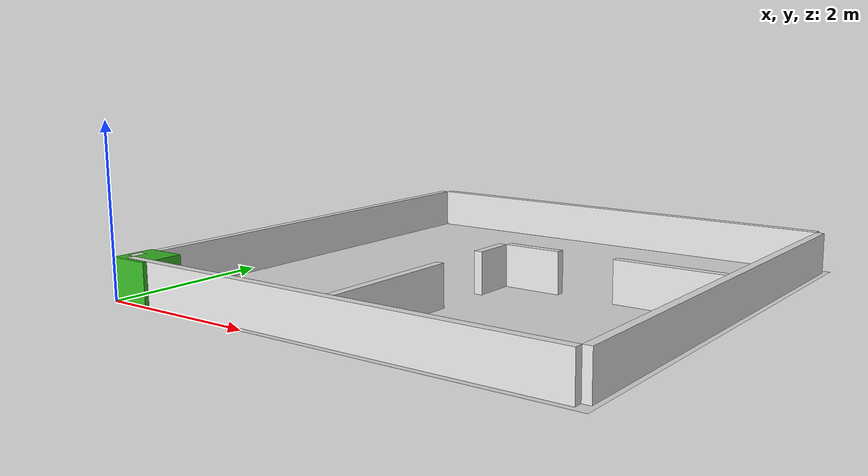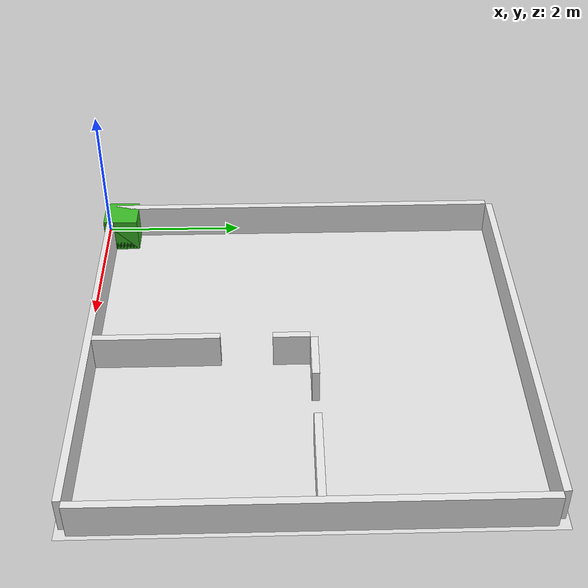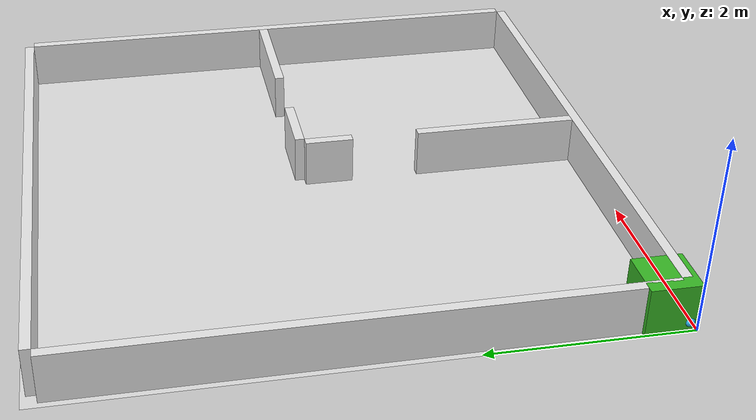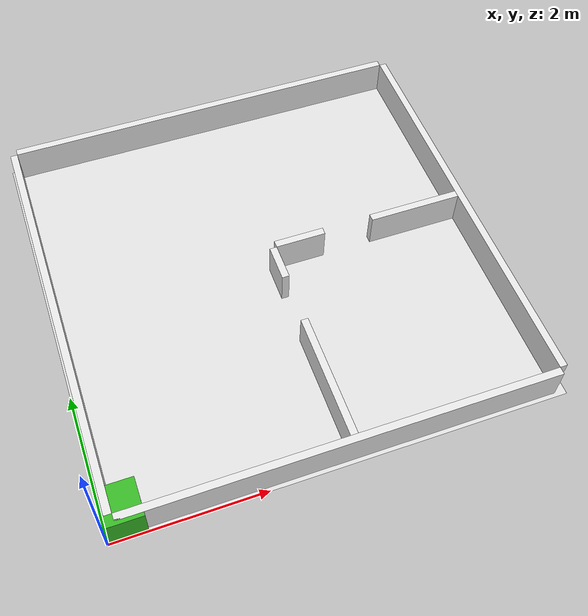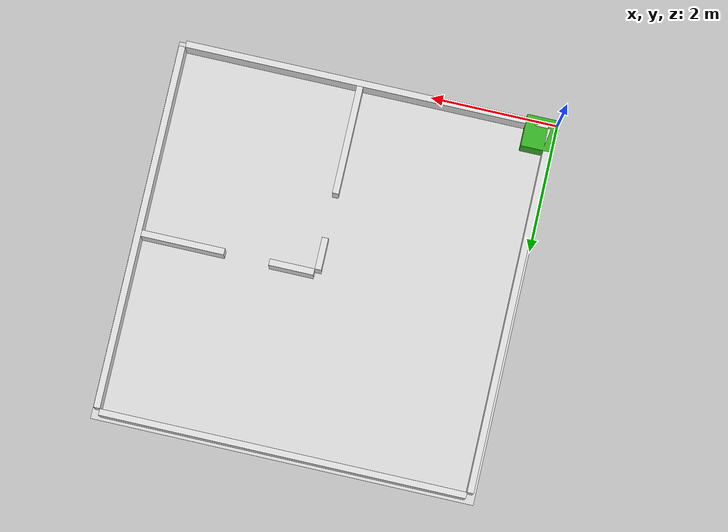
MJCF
<?xml version="1.0" encoding="utf-8"?>
<mujoco>
	<compiler angle="radian" coordinate="local" meshdir="d:/OpenAI/mujoco-worldgen/assets/stls" texturedir="d:/OpenAI/mujoco-worldgen/assets/textures"></compiler>
	<visual>
		<global offwidth="1920" offheight="1080"></global>
		<rgba fog="1.0 1.0 1.0 1"></rgba>
		<quality shadowsize="4096"></quality>
		<map fogstart="100" fogend="200" haze="0.00"></map>
	</visual>
	<asset>
		<texture name="skybox" type="skybox" builtin="gradient" rgb1="0.95 0.95 1.0" rgb2="1.0 1.0 1.0" width="512" height="512"></texture>
		<texture name="grid" type="2d" builtin="checker" rgb1=".8 .8 .8" rgb2=".95 .95 .95" width="512" height="512"></texture>
		<texture name="agent0:smiley" file="smiley.png" gridsize="3 4" gridlayout=".U..LFRB.D.."></texture>
		<texture name="agent1:smiley" file="smiley.png" gridsize="3 4" gridlayout=".U..LFRB.D.."></texture>
		<texture name="agent2:smiley" file="smiley.png" gridsize="3 4" gridlayout=".U..LFRB.D.."></texture>
		<texture name="agent3:smiley" file="smiley.png" gridsize="3 4" gridlayout=".U..LFRB.D.."></texture>
		<material name="grid" texture="grid" texrepeat="15 15" reflectance="0.2"></material>
		<material name="agent0:matSmiley" texture="agent0:smiley" specular="1" shininess="0.3" reflectance="0"></material>
		<material name="agent1:matSmiley" texture="agent1:smiley" specular="1" shininess="0.3" reflectance="0"></material>
		<material name="agent2:matSmiley" texture="agent2:smiley" specular="1" shininess="0.3" reflectance="0"></material>
		<material name="agent3:matSmiley" texture="agent3:smiley" specular="1" shininess="0.3" reflectance="0"></material>
		<material name="ramp0:rampmat" specular="1" shininess="0.3" reflectance="0" rgba="0 0.5 1 1"></material>
		<mesh file="ramp.stl" name="ramp0:ramp" scale="0.5 0.5 0.5"></mesh>
	</asset>
	<option timestep="0.005">
		<flag warmstart="enable"></flag>
	</option>
	<worldbody>
		<light name="sun" pos="0 0 10" dir="0 0 -1" directional="true" castshadow="true" diffuse="0.8 0.8 0.8" specular="0.1 0.1 0.1"></light>
		<light name="ambient_fill" pos="5 5 10" dir="-1 -1 -1" directional="true" diffuse="0.4 0.4 0.4" castshadow="false"></light>
		<light name="back_fill" pos="-5 -5 10" dir="1 1 -1" directional="true" diffuse="0.2 0.2 0.2" castshadow="false"></light>
		<geom name="floor0" pos="3 3 0" size="3 3 1" type="plane" condim="3" material="grid" friction="0.2"></geom>
		<body name="floor0" pos="3 3 0"></body>
		<body name="wall0" pos="0.1 3 0.25">
			<geom size="0.05 2.85 0.25" type="box" condim="3" name="wall0" rgba="0.9 0.9 0.9 1" group="1" friction="0.01"></geom>
		</body>
		<body name="wall1" pos="3 0.1 0.25">
			<geom size="2.85 0.05 0.25" type="box" condim="3" name="wall1" rgba="0.9 0.9 0.9 1" group="1" friction="0.01"></geom>
		</body>
		<body name="wall2" pos="5.9 3 0.25">
			<geom size="0.05 2.85 0.25" type="box" condim="3" name="wall2" rgba="0.9 0.9 0.9 1" group="1" friction="0.01"></geom>
		</body>
		<body name="wall3" pos="3 5.9 0.25">
			<geom size="2.85 0.05 0.25" type="box" condim="3" name="wall3" rgba="0.9 0.9 0.9 1" group="1" friction="0.01"></geom>
		</body>
		<body name="wall4" pos="3.1 1 0.25">
			<geom size="0.05 0.85 0.25" type="box" condim="3" name="wall4" rgba="0.9 0.9 0.9 1" group="1" friction="0.01"></geom>
		</body>
		<body name="wall5" pos="3.1 2.8 0.25">
			<geom size="0.05 0.25 0.25" type="box" condim="3" name="wall5" rgba="0.9 0.9 0.9 1" group="1" friction="0.01"></geom>
		</body>
		<body name="wall6" pos="3.5 3.1 0.25">
			<geom size="0.35 0.05 0.25" type="box" condim="3" name="wall6" rgba="0.9 0.9 0.9 1" group="1" friction="0.01"></geom>
		</body>
		<body name="wall7" pos="5.2 3.1 0.25">
			<geom size="0.65 0.05 0.25" type="box" condim="3" name="wall7" rgba="0.9 0.9 0.9 1" group="1" friction="0.01"></geom>
		</body>
		<body name="agent0:particle" pos="0.15 0.15 0.15">
			<joint axis="1 0 0" damping="10" name="agent0:tx" pos="0 0 0" type="slide"></joint>
			<joint axis="0 1 0" damping="10" name="agent0:ty" pos="0 0 0" type="slide"></joint>
			<joint axis="0 0 1" damping="1" name="agent0:tz" pos="0 0 0" type="slide"></joint>
			<joint axis="0 0 1" damping="10" name="agent0:rz" pos="0 0 0" type="hinge"></joint>
			<geom name="agent0:agent" material="agent0:matSmiley" mass="1" pos="0 0 0" rgba="0.18 0.73 0.95 1" size="0.15" type="sphere" euler="1.57 0 0" friction="0.01"></geom>
			<geom name="agent0:arm1" mass="0" pos="-0.13 -0.075 -0.05" rgba="0.18 0.73 0.95 1" size="0.05" type="sphere" euler="1.57 0 0" friction="0.01"></geom>
			<geom name="agent0:arm2" mass="0" pos="0.13 -0.075 -0.05" rgba="0.18 0.73 0.95 1" size="0.05" type="sphere" euler="1.57 0 0" friction="0.01"></geom>
		</body>
		<body name="agent1:particle" pos="0.15 0.15 0.15">
			<joint axis="1 0 0" damping="10" name="agent1:tx" pos="0 0 0" type="slide"></joint>
			<joint axis="0 1 0" damping="10" name="agent1:ty" pos="0 0 0" type="slide"></joint>
			<joint axis="0 0 1" damping="1" name="agent1:tz" pos="0 0 0" type="slide"></joint>
			<joint axis="0 0 1" damping="10" name="agent1:rz" pos="0 0 0" type="hinge"></joint>
			<geom name="agent1:agent" material="agent1:matSmiley" mass="1" pos="0 0 0" rgba="0.18 0.73 0.95 1" size="0.15" type="sphere" euler="1.57 0 0" friction="0.01"></geom>
			<geom name="agent1:arm1" mass="0" pos="-0.13 -0.075 -0.05" rgba="0.18 0.73 0.95 1" size="0.05" type="sphere" euler="1.57 0 0" friction="0.01"></geom>
			<geom name="agent1:arm2" mass="0" pos="0.13 -0.075 -0.05" rgba="0.18 0.73 0.95 1" size="0.05" type="sphere" euler="1.57 0 0" friction="0.01"></geom>
		</body>
		<body name="agent2:particle" pos="0.15 0.15 0.15">
			<joint axis="1 0 0" damping="10" name="agent2:tx" pos="0 0 0" type="slide"></joint>
			<joint axis="0 1 0" damping="10" name="agent2:ty" pos="0 0 0" type="slide"></joint>
			<joint axis="0 0 1" damping="1" name="agent2:tz" pos="0 0 0" type="slide"></joint>
			<joint axis="0 0 1" damping="10" name="agent2:rz" pos="0 0 0" type="hinge"></joint>
			<geom name="agent2:agent" material="agent2:matSmiley" mass="1" pos="0 0 0" rgba="0.95 0.3 0.3 1" size="0.15" type="sphere" euler="1.57 0 0" friction="0.01"></geom>
			<geom name="agent2:arm1" mass="0" pos="-0.13 -0.075 -0.05" rgba="0.95 0.3 0.3 1" size="0.05" type="sphere" euler="1.57 0 0" friction="0.01"></geom>
			<geom name="agent2:arm2" mass="0" pos="0.13 -0.075 -0.05" rgba="0.95 0.3 0.3 1" size="0.05" type="sphere" euler="1.57 0 0" friction="0.01"></geom>
		</body>
		<body name="agent3:particle" pos="0.15 0.15 0.15">
			<joint axis="1 0 0" damping="10" name="agent3:tx" pos="0 0 0" type="slide"></joint>
			<joint axis="0 1 0" damping="10" name="agent3:ty" pos="0 0 0" type="slide"></joint>
			<joint axis="0 0 1" damping="1" name="agent3:tz" pos="0 0 0" type="slide"></joint>
			<joint axis="0 0 1" damping="10" name="agent3:rz" pos="0 0 0" type="hinge"></joint>
			<geom name="agent3:agent" material="agent3:matSmiley" mass="1" pos="0 0 0" rgba="0.95 0.3 0.3 1" size="0.15" type="sphere" euler="1.57 0 0" friction="0.01"></geom>
			<geom name="agent3:arm1" mass="0" pos="-0.13 -0.075 -0.05" rgba="0.95 0.3 0.3 1" size="0.05" type="sphere" euler="1.57 0 0" friction="0.01"></geom>
			<geom name="agent3:arm2" mass="0" pos="0.13 -0.075 -0.05" rgba="0.95 0.3 0.3 1" size="0.05" type="sphere" euler="1.57 0 0" friction="0.01"></geom>
		</body>
		<body name="moveable_box0" pos="0.25 0.25 0.25">
			<joint name="moveable_box0:slide0" axis="1 0 0" type="slide" damping="0.01" pos="0 0 0"></joint>
			<joint name="moveable_box0:slide1" axis="0 1 0" type="slide" damping="0.01" pos="0 0 0"></joint>
			<joint name="moveable_box0:slide2" axis="0 0 1" type="slide" damping="0.01" pos="0 0 0"></joint>
			<joint name="moveable_box0:hinge2" axis="0 0 1" type="hinge" damping="0.01" pos="0 0 0"></joint>
			<geom size="0.25 0.25 0.25" type="box" condim="3" name="moveable_box0" rgba="0.22 0.72 0.15 1" mass="1" friction="0.2"></geom>
		</body>
		<body name="moveable_box1" pos="0.25 0.25 0.25">
			<joint name="moveable_box1:slide0" axis="1 0 0" type="slide" damping="0.01" pos="0 0 0"></joint>
			<joint name="moveable_box1:slide1" axis="0 1 0" type="slide" damping="0.01" pos="0 0 0"></joint>
			<joint name="moveable_box1:slide2" axis="0 0 1" type="slide" damping="0.01" pos="0 0 0"></joint>
			<joint name="moveable_box1:hinge2" axis="0 0 1" type="hinge" damping="0.01" pos="0 0 0"></joint>
			<geom size="0.25 0.25 0.25" type="box" condim="3" name="moveable_box1" rgba="0.22 0.72 0.15 1" mass="1" friction="0.2"></geom>
		</body>
		<body name="ramp0:ramp" pos="0.25 0.25 0.25">
			<geom name="ramp0:ramp" pos="0 0 0" type="mesh" mesh="ramp0:ramp" mass="1" material="ramp0:rampmat" rgba="0.22 0.72 0.15 1" friction="0.01"></geom>
			<joint axis="1 0 0" damping="0.1" name="ramp0:tx" pos="0 0 0" type="slide"></joint>
			<joint axis="0 1 0" damping="0.1" name="ramp0:ty" pos="0 0 0" type="slide"></joint>
			<joint axis="0 0 1" damping="0.1" name="ramp0:tz" pos="0 0 0" type="slide"></joint>
			<joint axis="0 0 1" damping="0.1" name="ramp0:rz" pos="0 0 0" type="hinge"></joint>
		</body>
	</worldbody>
	<equality>
		<weld name="agent0:gripper" body1="agent0:particle" body2="floor0" active="false"></weld>
		<weld name="agent1:gripper" body1="agent1:particle" body2="floor0" active="false"></weld>
		<weld name="agent2:gripper" body1="agent2:particle" body2="floor0" active="false"></weld>
		<weld name="agent3:gripper" body1="agent3:particle" body2="floor0" active="false"></weld>
	</equality>
	<actuator>
		<motor name="agent0:motortx" gear="100" joint="agent0:tx"></motor>
		<motor name="agent0:motorty" gear="100" joint="agent0:ty"></motor>
		<motor name="agent0:motorrz" gear="100" joint="agent0:rz"></motor>
		<motor name="agent1:motortx" gear="100" joint="agent1:tx"></motor>
		<motor name="agent1:motorty" gear="100" joint="agent1:ty"></motor>
		<motor name="agent1:motorrz" gear="100" joint="agent1:rz"></motor>
		<motor name="agent2:motortx" gear="100" joint="agent2:tx"></motor>
		<motor name="agent2:motorty" gear="100" joint="agent2:ty"></motor>
		<motor name="agent2:motorrz" gear="100" joint="agent2:rz"></motor>
		<motor name="agent3:motortx" gear="100" joint="agent3:tx"></motor>
		<motor name="agent3:motorty" gear="100" joint="agent3:ty"></motor>
		<motor name="agent3:motorrz" gear="100" joint="agent3:rz"></motor>
	</actuator>
</mujoco>
